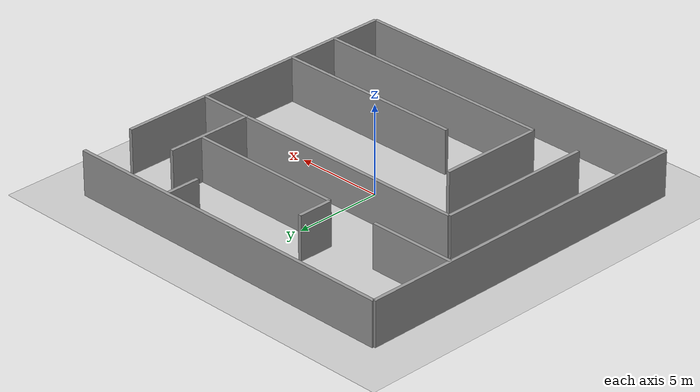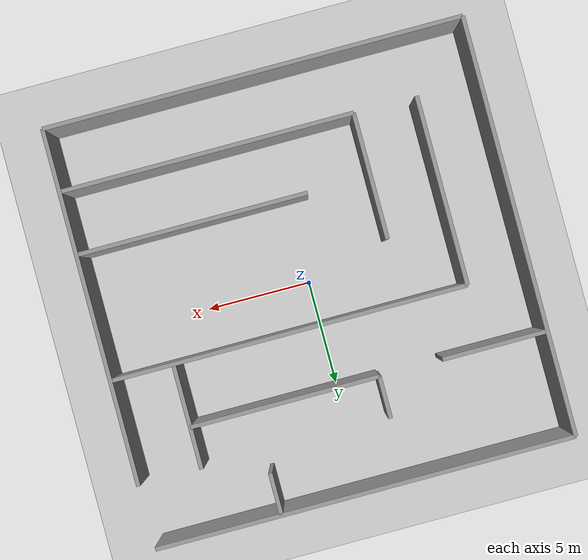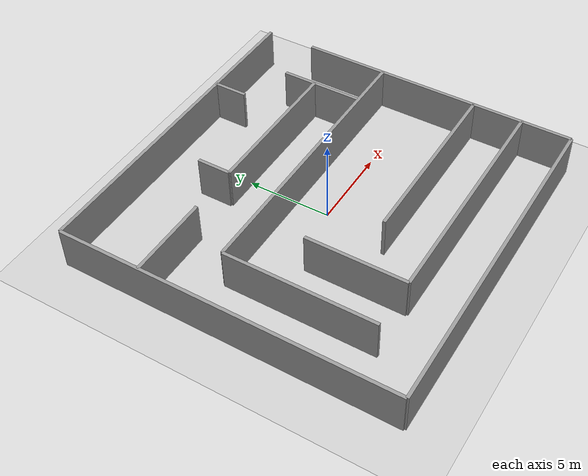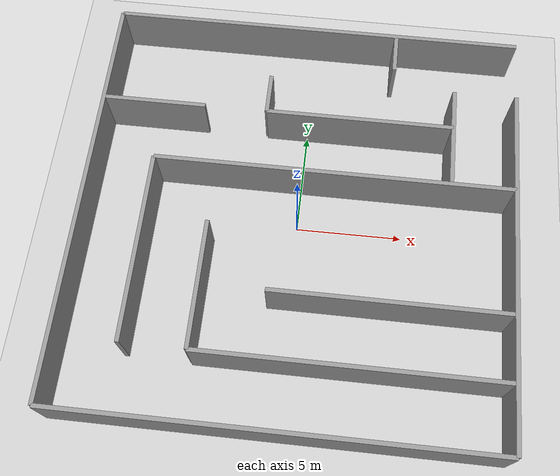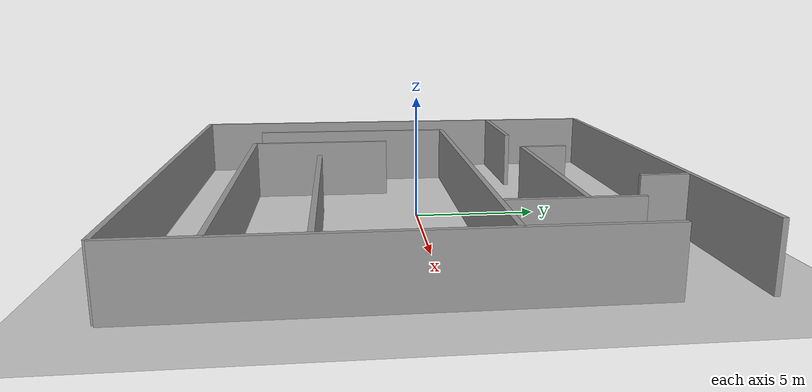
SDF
<?xml version="1.0" ?>
<sdf version="1.4">
  <world name="maze">
    <physics type="ode">
      <gravity>0 0 -9.81</gravity>
      <ode>
        <solver>
          <type>quick</type>
          <iters>50</iters>
          <sor>1.4</sor>
        </solver>
        <constraints>
          <cfm>0.0</cfm>
          <erp>0.2</erp>
          <contact_max_correcting_vel>100.0</contact_max_correcting_vel>
          <contact_surface_layer>0.0</contact_surface_layer>
        </constraints>
      </ode>
      <real_time_update_rate>1000</real_time_update_rate>
      <max_step_size>0.001</max_step_size>
    </physics>
    <scene>
      <ambient>0.3 0.3 0.3 1.0</ambient>
    </scene>
    <!-- Focus camera on the maze -->
    <gui fullscreen='0'>
      <camera name='user_camera'>
        <pose>0 0 35 0 1.570796327 1.570796327</pose>
        <view_controller>orbit</view_controller>
      </camera>
    </gui>
    <!-- Light Source -->
    <light type="directional" name="sun">
      <cast_shadows>true</cast_shadows>
      <pose>0 0 100 0 0 0</pose>
      <diffuse>0.9 0.9 0.9 1</diffuse>
      <specular>0.1 0.1 0.1 1</specular>
      <attenuation>
        <range>1000</range>
        <constant>0.9</constant>
        <linear>0.01</linear>
        <quadratic>0.001</quadratic>
      </attenuation>
      <direction>-0.2 0.0 -1.0</direction>
    </light>
    <!-- Point Light Source -->
    <light type="point" name="light_bulb">
      <cast_shadows>false</cast_shadows>
      <pose>0 0 10 0 0 0</pose>
      <diffuse>0.5 0.5 0.5 1</diffuse>
      <specular>0.0 0.0 0.0 1</specular>
      <attenuation>
        <range>80</range>
        <constant>0.9</constant>
        <linear>0.01</linear>
        <quadratic>0.001</quadratic>
      </attenuation>
    </light>
    <!-- A ground plane -->
    <include>
      <uri>model://ground_plane</uri>
      <pose>0 0 0 0 0 0</pose>
    </include>
    <!-- The the maze -->
    <include>
      <uri>model://challenge_maze</uri>
      <pose>0 0 0 0 0 0</pose>
    </include>
    <!-- The coins -->
  </world>
</sdf>

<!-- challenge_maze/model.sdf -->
<sdf version='1.4'>
  <model name='challenge_maze'>
    <static>1</static>
    <link name='Wall_0'>
      <pose>-10 -10 0 0 0 1.570796327</pose>
      <collision name='Wall_0_Collision'>
        <pose>10 0 1.25 0 0 0</pose>
        <geometry>
          <box>
            <size>20 0.2 2.5</size>
          </box>
        </geometry>
      </collision>
      <visual name='Wall_0_Visual'>
        <pose>10 0 1.25 0 0 0</pose>
        <geometry>
          <box>
            <size>20 0.2 2.5</size>
          </box>
        </geometry>
        <material>
          <script>
            <uri>file://media/materials/scripts/gazebo.material</uri>
            <name>Gazebo/Grey</name>
          </script>
        </material>
      </visual>
    </link>

    <link name='Wall_1'>
      <pose>-10 -10 0 0 0 0</pose>
      <collision name='Wall_1_Collision'>
        <pose>10 0 1.25 0 0 0</pose>
        <geometry>
          <box>
            <size>20 0.2 2.5</size>
          </box>
        </geometry>
      </collision>
      <visual name='Wall_1_Visual'>
        <pose>10 0 1.25 0 0 0</pose>
        <geometry>
          <box>
            <size>20 0.2 2.5</size>
          </box>
        </geometry>
        <material>
          <script>
            <uri>file://media/materials/scripts/gazebo.material</uri>
            <name>Gazebo/Grey</name>
          </script>
        </material>
      </visual>
    </link>

    <link name='Wall_2'>
      <pose>10 -10 0 0 0 1.570796327</pose>
      <collision name='Wall_2_Collision'>
        <pose>8.5 0 1.25 0 0 0</pose>
        <geometry>
          <box>
            <size>17 0.2 2.5</size>
          </box>
        </geometry>
      </collision>
      <visual name='Wall_2_Visual'>
        <pose>8.5 0 1.25 0 0 0</pose>
        <geometry>
          <box>
            <size>17 0.2 2.5</size>
          </box>
        </geometry>
        <material>
          <script>
            <uri>file://media/materials/scripts/gazebo.material</uri>
            <name>Gazebo/Grey</name>
          </script>
        </material>
      </visual>
    </link>

    <link name='Wall_3'>
      <pose>-10 10 0 0 0 0</pose>
      <collision name='Wall_3_Collision'>
        <pose>10 0 1.25 0 0 0</pose>
        <geometry>
          <box>
            <size>20 0.2 2.5</size>
          </box>
        </geometry>
      </collision>
      <visual name='Wall_3_Visual'>
        <pose>10 0 1.25 0 0 0</pose>
        <geometry>
          <box>
            <size>20 0.2 2.5</size>
          </box>
        </geometry>
        <material>
          <script>
            <uri>file://media/materials/scripts/gazebo.material</uri>
            <name>Gazebo/Grey</name>
          </script>
        </material>
      </visual>
    </link>

    <link name='Wall_4'>
      <pose>-4 -7 0 0 0 0</pose>
      <collision name='Wall_4_Collision'>
        <pose>7 0 1.25 0 0 0</pose>
        <geometry>
          <box>
            <size>14 0.2 2.5</size>
          </box>
        </geometry>
      </collision>
      <visual name='Wall_4_Visual'>
        <pose>7 0 1.25 0 0 0</pose>
        <geometry>
          <box>
            <size>14 0.2 2.5</size>
          </box>
        </geometry>
        <material>
          <script>
            <uri>file://media/materials/scripts/gazebo.material</uri>
            <name>Gazebo/Grey</name>
          </script>
        </material>
      </visual>
    </link>

    <link name='Wall_5'>
      <pose>-7 -7 0 0 0 1.570796327</pose>
      <collision name='Wall_5_Collision'>
        <pose>4.5 0 1.25 0 0 0</pose>
        <geometry>
          <box>
            <size>9 0.2 2.5</size>
          </box>
        </geometry>
      </collision>
      <visual name='Wall_5_Visual'>
        <pose>4.5 0 1.25 0 0 0</pose>
        <geometry>
          <box>
            <size>9 0.2 2.5</size>
          </box>
        </geometry>
        <material>
          <script>
            <uri>file://media/materials/scripts/gazebo.material</uri>
            <name>Gazebo/Grey</name>
          </script>
        </material>
      </visual>
    </link>

    <link name='Wall_6'>
      <pose>-1 -4 0 0 0 0</pose>
      <collision name='Wall_6_Collision'>
        <pose>5.5 0 1.25 0 0 0</pose>
        <geometry>
          <box>
            <size>11 0.2 2.5</size>
          </box>
        </geometry>
      </collision>
      <visual name='Wall_6_Visual'>
        <pose>5.5 0 1.25 0 0 0</pose>
        <geometry>
          <box>
            <size>11 0.2 2.5</size>
          </box>
        </geometry>
        <material>
          <script>
            <uri>file://media/materials/scripts/gazebo.material</uri>
            <name>Gazebo/Grey</name>
          </script>
        </material>
      </visual>
    </link>

    <link name='Wall_7'>
      <pose>-4 -7 0 0 0 1.570796327</pose>
      <collision name='Wall_7_Collision'>
        <pose>3 0 1.25 0 0 0</pose>
        <geometry>
          <box>
            <size>6 0.2 2.5</size>
          </box>
        </geometry>
      </collision>
      <visual name='Wall_7_Visual'>
        <pose>3 0 1.25 0 0 0</pose>
        <geometry>
          <box>
            <size>6 0.2 2.5</size>
          </box>
        </geometry>
        <material>
          <script>
            <uri>file://media/materials/scripts/gazebo.material</uri>
            <name>Gazebo/Grey</name>
          </script>
        </material>
      </visual>
    </link>

    <link name='Wall_8'>
      <pose>-7 2 0 0 0 0</pose>
      <collision name='Wall_8_Collision'>
        <pose>8.5 0 1.25 0 0 0</pose>
        <geometry>
          <box>
            <size>17 0.2 2.5</size>
          </box>
        </geometry>
      </collision>
      <visual name='Wall_8_Visual'>
        <pose>8.5 0 1.25 0 0 0</pose>
        <geometry>
          <box>
            <size>17 0.2 2.5</size>
          </box>
        </geometry>
        <material>
          <script>
            <uri>file://media/materials/scripts/gazebo.material</uri>
            <name>Gazebo/Grey</name>
          </script>
        </material>
      </visual>
    </link>

    <link name='Wall_9'>
      <pose>-2 5 0 0 0 0</pose>
      <collision name='Wall_9_Collision'>
        <pose>4.5 0 1.25 0 0 0</pose>
        <geometry>
          <box>
            <size>9 0.2 2.5</size>
          </box>
        </geometry>
      </collision>
      <visual name='Wall_9_Visual'>
        <pose>4.5 0 1.25 0 0 0</pose>
        <geometry>
          <box>
            <size>9 0.2 2.5</size>
          </box>
        </geometry>
        <material>
          <script>
            <uri>file://media/materials/scripts/gazebo.material</uri>
            <name>Gazebo/Grey</name>
          </script>
        </material>
      </visual>
    </link>

    <link name='Wall_10'>
      <pose>-2 5 0 0 0 1.570796327</pose>
      <collision name='Wall_10_Collision'>
        <pose>1 0 1.25 0 0 0</pose>
        <geometry>
          <box>
            <size>2 0.2 2.5</size>
          </box>
        </geometry>
      </collision>
      <visual name='Wall_10_Visual'>
        <pose>1 0 1.25 0 0 0</pose>
        <geometry>
          <box>
            <size>2 0.2 2.5</size>
          </box>
        </geometry>
        <material>
          <script>
            <uri>file://media/materials/scripts/gazebo.material</uri>
            <name>Gazebo/Grey</name>
          </script>
        </material>
      </visual>
    </link>

    <link name='Wall_11'>
      <pose>4 8 0 0 0 1.570796327</pose>
      <collision name='Wall_11_Collision'>
        <pose>1 0 1.25 0 0 0</pose>
        <geometry>
          <box>
            <size>2 0.2 2.5</size>
          </box>
        </geometry>
      </collision>
      <visual name='Wall_11_Visual'>
        <pose>1 0 1.25 0 0 0</pose>
        <geometry>
          <box>
            <size>2 0.2 2.5</size>
          </box>
        </geometry>
        <material>
          <script>
            <uri>file://media/materials/scripts/gazebo.material</uri>
            <name>Gazebo/Grey</name>
          </script>
        </material>
      </visual>
    </link>

    <link name='Wall_12'>
      <pose>7 2 0 0 0 1.570796327</pose>
      <collision name='Wall_12_Collision'>
        <pose>2.5 0 1.25 0 0 0</pose>
        <geometry>
          <box>
            <size>5 0.2 2.5</size>
          </box>
        </geometry>
      </collision>
      <visual name='Wall_12_Visual'>
        <pose>2.5 0 1.25 0 0 0</pose>
        <geometry>
          <box>
            <size>5 0.2 2.5</size>
          </box>
        </geometry>
        <material>
          <script>
            <uri>file://media/materials/scripts/gazebo.material</uri>
            <name>Gazebo/Grey</name>
          </script>
        </material>
      </visual>
    </link>

    <link name='Wall_13'>
      <pose>-10 5 0 0 0 0</pose>
      <collision name='Wall_13_Collision'>
        <pose>2.5 0 1.25 0 0 0</pose>
        <geometry>
          <box>
            <size>5 0.2 2.5</size>
          </box>
        </geometry>
      </collision>
      <visual name='Wall_13_Visual'>
        <pose>2.5 0 1.25 0 0 0</pose>
        <geometry>
          <box>
            <size>5 0.2 2.5</size>
          </box>
        </geometry>
        <material>
          <script>
            <uri>file://media/materials/scripts/gazebo.material</uri>
            <name>Gazebo/Grey</name>
          </script>
        </material>
      </visual>
    </link>

  </model>
</sdf>
